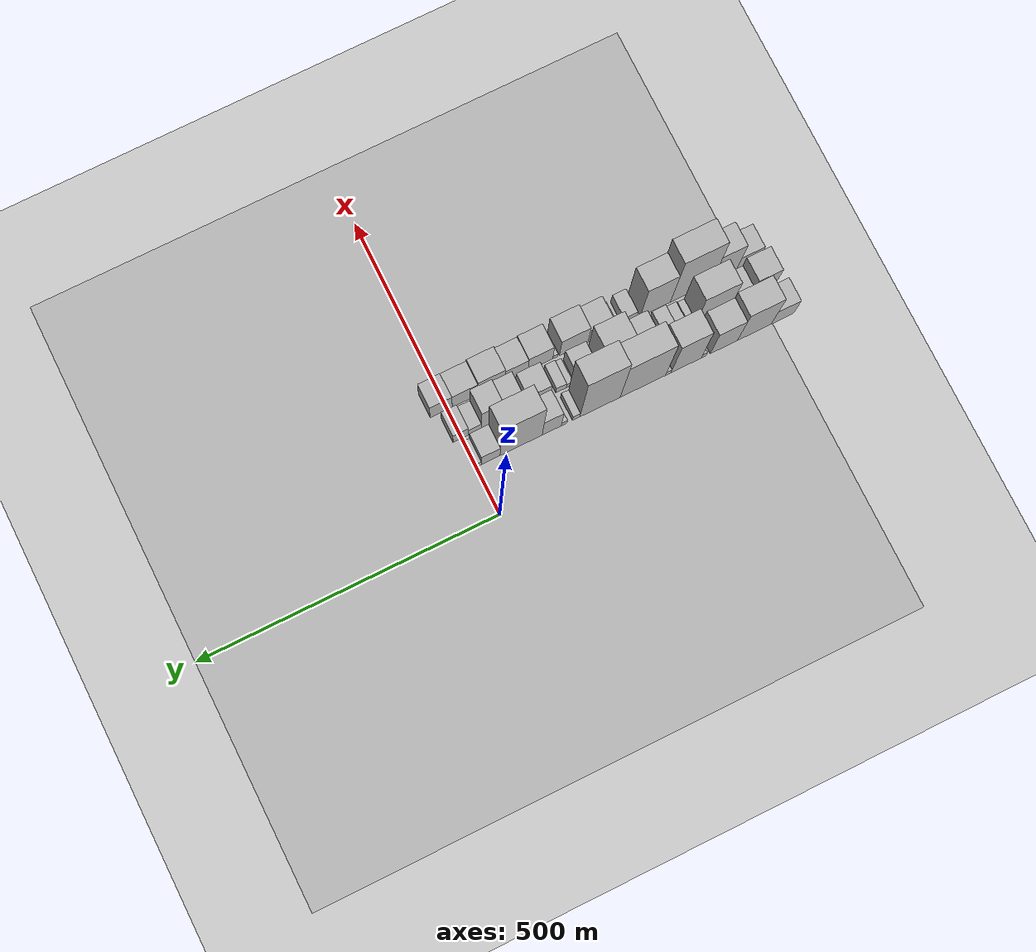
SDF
<sdf version="1.6">
 <world name="default">
  <include><name>ground_plane_1</name><uri>model://HANNAS_ground_plane</uri></include>
  <include>
   <name>ground_plane_2</name>
   <uri>model://HANNAS_ground_plane</uri>
   <pose>100 0 0  0 0 0</pose>
  </include>
  <model name="building_1">
   <static>1</static>
   <pose>100.0000 -516.7739 0 0.000000 0.000000 0.000000</pose>
   <link name="link">
    <pose>0 0 37.50 0 0 0</pose>
    <collision name="collision"><geometry><box><size>40.0000 38.4522 75.0000</size></box></geometry></collision>
    <visual name="visual">
     <cast_shadows>0</cast_shadows>
     <geometry><box><size>40.0000 38.4522 75.0000</size></box></geometry>
     <material>
      <script>
       <uri>model://HANNAS_wall/materials/scripts</uri>
       <uri>model://HANNAS_wall/materials/textures</uri>
       <name>vrc/HANNAS_wall</name>
      </script>
     </material>
    </visual>
   </link>
  </model>
  <model name="building_2">
   <static>1</static>
   <pose>100.0000 -468.6095 0 0.000000 0.000000 0.000000</pose>
   <link name="link">
    <pose>0 0 73.50 0 0 0</pose>
    <collision name="collision"><geometry><box><size>40.0000 57.8766 147.0000</size></box></geometry></collision>
    <visual name="visual">
     <cast_shadows>0</cast_shadows>
     <geometry><box><size>40.0000 57.8766 147.0000</size></box></geometry>
     <material>
      <script>
       <uri>model://HANNAS_wall/materials/scripts</uri>
       <uri>model://HANNAS_wall/materials/textures</uri>
       <name>vrc/HANNAS_wall</name>
      </script>
     </material>
    </visual>
   </link>
  </model>
  <model name="building_3">
   <static>1</static>
   <pose>100.0000 -416.5779 0 0.000000 0.000000 0.000000</pose>
   <link name="link">
    <pose>0 0 58.50 0 0 0</pose>
    <collision name="collision"><geometry><box><size>40.0000 46.1865 117.0000</size></box></geometry></collision>
    <visual name="visual">
     <cast_shadows>0</cast_shadows>
     <geometry><box><size>40.0000 46.1865 117.0000</size></box></geometry>
     <material>
      <script>
       <uri>model://HANNAS_wall/materials/scripts</uri>
       <uri>model://HANNAS_wall/materials/textures</uri>
       <name>vrc/HANNAS_wall</name>
      </script>
     </material>
    </visual>
   </link>
  </model>
  <model name="building_4">
   <static>1</static>
   <pose>100.0000 -382.2491 0 0.000000 0.000000 0.000000</pose>
   <link name="link">
    <pose>0 0 10.50 0 0 0</pose>
    <collision name="collision"><geometry><box><size>40.0000 8.4712 21.0000</size></box></geometry></collision>
    <visual name="visual">
     <cast_shadows>0</cast_shadows>
     <geometry><box><size>40.0000 8.4712 21.0000</size></box></geometry>
     <material>
      <script>
       <uri>model://HANNAS_wall/materials/scripts</uri>
       <uri>model://HANNAS_wall/materials/textures</uri>
       <name>vrc/HANNAS_wall</name>
      </script>
     </material>
    </visual>
   </link>
  </model>
  <model name="building_5">
   <static>1</static>
   <pose>100.0000 -352.4027 0 0.000000 0.000000 0.000000</pose>
   <link name="link">
    <pose>0 0 79.50 0 0 0</pose>
    <collision name="collision"><geometry><box><size>40.0000 51.2216 159.0000</size></box></geometry></collision>
    <visual name="visual">
     <cast_shadows>0</cast_shadows>
     <geometry><box><size>40.0000 51.2216 159.0000</size></box></geometry>
     <material>
      <script>
       <uri>model://HANNAS_wall/materials/scripts</uri>
       <uri>model://HANNAS_wall/materials/textures</uri>
       <name>vrc/HANNAS_wall</name>
      </script>
     </material>
    </visual>
   </link>
  </model>
  <model name="building_6">
   <static>1</static>
   <pose>100.0000 -322.1300 0 0.000000 0.000000 0.000000</pose>
   <link name="link">
    <pose>0 0 10.50 0 0 0</pose>
    <collision name="collision"><geometry><box><size>40.0000 9.3240 21.0000</size></box></geometry></collision>
    <visual name="visual">
     <cast_shadows>0</cast_shadows>
     <geometry><box><size>40.0000 9.3240 21.0000</size></box></geometry>
     <material>
      <script>
       <uri>model://HANNAS_wall/materials/scripts</uri>
       <uri>model://HANNAS_wall/materials/textures</uri>
       <name>vrc/HANNAS_wall</name>
      </script>
     </material>
    </visual>
   </link>
  </model>
  <model name="building_7">
   <static>1</static>
   <pose>100.0000 -279.0681 0 0.000000 0.000000 0.000000</pose>
   <link name="link">
    <pose>0 0 96.00 0 0 0</pose>
    <collision name="collision"><geometry><box><size>40.0000 76.7997 192.0000</size></box></geometry></collision>
    <visual name="visual">
     <cast_shadows>0</cast_shadows>
     <geometry><box><size>40.0000 76.7997 192.0000</size></box></geometry>
     <material>
      <script>
       <uri>model://HANNAS_wall/materials/scripts</uri>
       <uri>model://HANNAS_wall/materials/textures</uri>
       <name>vrc/HANNAS_wall</name>
      </script>
     </material>
    </visual>
   </link>
  </model>
  <model name="building_8">
   <static>1</static>
   <pose>100.0000 -206.6568 0 0.000000 0.000000 0.000000</pose>
   <link name="link">
    <pose>0 0 109.50 0 0 0</pose>
    <collision name="collision"><geometry><box><size>40.0000 68.0230 219.0000</size></box></geometry></collision>
    <visual name="visual">
     <cast_shadows>0</cast_shadows>
     <geometry><box><size>40.0000 68.0230 219.0000</size></box></geometry>
     <material>
      <script>
       <uri>model://HANNAS_wall/materials/scripts</uri>
       <uri>model://HANNAS_wall/materials/textures</uri>
       <name>vrc/HANNAS_wall</name>
      </script>
     </material>
    </visual>
   </link>
  </model>
  <model name="building_9">
   <static>1</static>
   <pose>100.0000 -166.4375 0 0.000000 0.000000 0.000000</pose>
   <link name="link">
    <pose>0 0 13.50 0 0 0</pose>
    <collision name="collision"><geometry><box><size>40.0000 12.4156 27.0000</size></box></geometry></collision>
    <visual name="visual">
     <cast_shadows>0</cast_shadows>
     <geometry><box><size>40.0000 12.4156 27.0000</size></box></geometry>
     <material>
      <script>
       <uri>model://HANNAS_wall/materials/scripts</uri>
       <uri>model://HANNAS_wall/materials/textures</uri>
       <name>vrc/HANNAS_wall</name>
      </script>
     </material>
    </visual>
   </link>
  </model>
  <model name="building_10">
   <static>1</static>
   <pose>100.0000 -146.2951 0 0.000000 0.000000 0.000000</pose>
   <link name="link">
    <pose>0 0 10.50 0 0 0</pose>
    <collision name="collision"><geometry><box><size>40.0000 9.8693 21.0000</size></box></geometry></collision>
    <visual name="visual">
     <cast_shadows>0</cast_shadows>
     <geometry><box><size>40.0000 9.8693 21.0000</size></box></geometry>
     <material>
      <script>
       <uri>model://HANNAS_wall/materials/scripts</uri>
       <uri>model://HANNAS_wall/materials/textures</uri>
       <name>vrc/HANNAS_wall</name>
      </script>
     </material>
    </visual>
   </link>
  </model>
  <model name="building_11">
   <static>1</static>
   <pose>100.0000 -125.3299 0 0.000000 0.000000 0.000000</pose>
   <link name="link">
    <pose>0 0 46.50 0 0 0</pose>
    <collision name="collision"><geometry><box><size>40.0000 32.0611 93.0000</size></box></geometry></collision>
    <visual name="visual">
     <cast_shadows>0</cast_shadows>
     <geometry><box><size>40.0000 32.0611 93.0000</size></box></geometry>
     <material>
      <script>
       <uri>model://HANNAS_wall/materials/scripts</uri>
       <uri>model://HANNAS_wall/materials/textures</uri>
       <name>vrc/HANNAS_wall</name>
      </script>
     </material>
    </visual>
   </link>
  </model>
  <model name="building_12">
   <static>1</static>
   <pose>100.0000 -74.0679 0 0.000000 0.000000 0.000000</pose>
   <link name="link">
    <pose>0 0 96.00 0 0 0</pose>
    <collision name="collision"><geometry><box><size>40.0000 70.4630 192.0000</size></box></geometry></collision>
    <visual name="visual">
     <cast_shadows>0</cast_shadows>
     <geometry><box><size>40.0000 70.4630 192.0000</size></box></geometry>
     <material>
      <script>
       <uri>model://HANNAS_wall/materials/scripts</uri>
       <uri>model://HANNAS_wall/materials/textures</uri>
       <name>vrc/HANNAS_wall</name>
      </script>
     </material>
    </visual>
   </link>
  </model>
  <model name="building_13">
   <static>1</static>
   <pose>100.0000 -23.1314 0 0.000000 0.000000 0.000000</pose>
   <link name="link">
    <pose>0 0 30.00 0 0 0</pose>
    <collision name="collision"><geometry><box><size>40.0000 31.4100 60.0000</size></box></geometry></collision>
    <visual name="visual">
     <cast_shadows>0</cast_shadows>
     <geometry><box><size>40.0000 31.4100 60.0000</size></box></geometry>
     <material>
      <script>
       <uri>model://HANNAS_wall/materials/scripts</uri>
       <uri>model://HANNAS_wall/materials/textures</uri>
       <name>vrc/HANNAS_wall</name>
      </script>
     </material>
    </visual>
   </link>
  </model>
  <model name="building_14">
   <static>1</static>
   <pose>100.0000 -1.5703 0 0.000000 0.000000 0.000000</pose>
   <link name="link">
    <pose>0 0 12.00 0 0 0</pose>
    <collision name="collision"><geometry><box><size>40.0000 11.7123 24.0000</size></box></geometry></collision>
    <visual name="visual">
     <cast_shadows>0</cast_shadows>
     <geometry><box><size>40.0000 11.7123 24.0000</size></box></geometry>
     <material>
      <script>
       <uri>model://HANNAS_wall/materials/scripts</uri>
       <uri>model://HANNAS_wall/materials/textures</uri>
       <name>vrc/HANNAS_wall</name>
      </script>
     </material>
    </visual>
   </link>
  </model>
  <model name="building_30">
   <static>1</static>
   <pose>149.0000 -506.9247 0 0.000000 0.000000 0.000000</pose>
   <link name="link">
    <pose>0 0 51.00 0 0 0</pose>
    <collision name="collision"><geometry><box><size>40.0000 40.1506 102.0000</size></box></geometry></collision>
    <visual name="visual">
     <cast_shadows>0</cast_shadows>
     <geometry><box><size>40.0000 40.1506 102.0000</size></box></geometry>
     <material>
      <script>
       <uri>model://HANNAS_wall/materials/scripts</uri>
       <uri>model://HANNAS_wall/materials/textures</uri>
       <name>vrc/HANNAS_wall</name>
      </script>
     </material>
    </visual>
   </link>
  </model>
  <model name="building_31">
   <static>1</static>
   <pose>149.0000 -469.2389 0 0.000000 0.000000 0.000000</pose>
   <link name="link">
    <pose>0 0 30.00 0 0 0</pose>
    <collision name="collision"><geometry><box><size>40.0000 35.2209 60.0000</size></box></geometry></collision>
    <visual name="visual">
     <cast_shadows>0</cast_shadows>
     <geometry><box><size>40.0000 35.2209 60.0000</size></box></geometry>
     <material>
      <script>
       <uri>model://HANNAS_wall/materials/scripts</uri>
       <uri>model://HANNAS_wall/materials/textures</uri>
       <name>vrc/HANNAS_wall</name>
      </script>
     </material>
    </visual>
   </link>
  </model>
  <model name="building_32">
   <static>1</static>
   <pose>149.0000 -422.1082 0 0.000000 0.000000 0.000000</pose>
   <link name="link">
    <pose>0 0 75.00 0 0 0</pose>
    <collision name="collision"><geometry><box><size>40.0000 59.0405 150.0000</size></box></geometry></collision>
    <visual name="visual">
     <cast_shadows>0</cast_shadows>
     <geometry><box><size>40.0000 59.0405 150.0000</size></box></geometry>
     <material>
      <script>
       <uri>model://HANNAS_wall/materials/scripts</uri>
       <uri>model://HANNAS_wall/materials/textures</uri>
       <name>vrc/HANNAS_wall</name>
      </script>
     </material>
    </visual>
   </link>
  </model>
  <model name="building_33">
   <static>1</static>
   <pose>149.0000 -386.8405 0 0.000000 0.000000 0.000000</pose>
   <link name="link">
    <pose>0 0 12.00 0 0 0</pose>
    <collision name="collision"><geometry><box><size>40.0000 11.4949 24.0000</size></box></geometry></collision>
    <visual name="visual">
     <cast_shadows>0</cast_shadows>
     <geometry><box><size>40.0000 11.4949 24.0000</size></box></geometry>
     <material>
      <script>
       <uri>model://HANNAS_wall/materials/scripts</uri>
       <uri>model://HANNAS_wall/materials/textures</uri>
       <name>vrc/HANNAS_wall</name>
      </script>
     </material>
    </visual>
   </link>
  </model>
  <model name="building_34">
   <static>1</static>
   <pose>149.0000 -368.6834 0 0.000000 0.000000 0.000000</pose>
   <link name="link">
    <pose>0 0 16.50 0 0 0</pose>
    <collision name="collision"><geometry><box><size>40.0000 18.8192 33.0000</size></box></geometry></collision>
    <visual name="visual">
     <cast_shadows>0</cast_shadows>
     <geometry><box><size>40.0000 18.8192 33.0000</size></box></geometry>
     <material>
      <script>
       <uri>model://HANNAS_wall/materials/scripts</uri>
       <uri>model://HANNAS_wall/materials/textures</uri>
       <name>vrc/HANNAS_wall</name>
      </script>
     </material>
    </visual>
   </link>
  </model>
  <model name="building_35">
   <static>1</static>
   <pose>149.0000 -347.5476 0 0.000000 0.000000 0.000000</pose>
   <link name="link">
    <pose>0 0 22.50 0 0 0</pose>
    <collision name="collision"><geometry><box><size>40.0000 23.4526 45.0000</size></box></geometry></collision>
    <visual name="visual">
     <cast_shadows>0</cast_shadows>
     <geometry><box><size>40.0000 23.4526 45.0000</size></box></geometry>
     <material>
      <script>
       <uri>model://HANNAS_wall/materials/scripts</uri>
       <uri>model://HANNAS_wall/materials/textures</uri>
       <name>vrc/HANNAS_wall</name>
      </script>
     </material>
    </visual>
   </link>
  </model>
  <model name="building_36">
   <static>1</static>
   <pose>149.0000 -330.9040 0 0.000000 0.000000 0.000000</pose>
   <link name="link">
    <pose>0 0 10.50 0 0 0</pose>
    <collision name="collision"><geometry><box><size>40.0000 9.8345 21.0000</size></box></geometry></collision>
    <visual name="visual">
     <cast_shadows>0</cast_shadows>
     <geometry><box><size>40.0000 9.8345 21.0000</size></box></geometry>
     <material>
      <script>
       <uri>model://HANNAS_wall/materials/scripts</uri>
       <uri>model://HANNAS_wall/materials/textures</uri>
       <name>vrc/HANNAS_wall</name>
      </script>
     </material>
    </visual>
   </link>
  </model>
  <model name="building_37">
   <static>1</static>
   <pose>149.0000 -307.1108 0 0.000000 0.000000 0.000000</pose>
   <link name="link">
    <pose>0 0 34.50 0 0 0</pose>
    <collision name="collision"><geometry><box><size>40.0000 37.7520 69.0000</size></box></geometry></collision>
    <visual name="visual">
     <cast_shadows>0</cast_shadows>
     <geometry><box><size>40.0000 37.7520 69.0000</size></box></geometry>
     <material>
      <script>
       <uri>model://HANNAS_wall/materials/scripts</uri>
       <uri>model://HANNAS_wall/materials/textures</uri>
       <name>vrc/HANNAS_wall</name>
      </script>
     </material>
    </visual>
   </link>
  </model>
  <model name="building_38">
   <static>1</static>
   <pose>149.0000 -256.8602 0 0.000000 0.000000 0.000000</pose>
   <link name="link">
    <pose>0 0 69.00 0 0 0</pose>
    <collision name="collision"><geometry><box><size>40.0000 50.7493 138.0000</size></box></geometry></collision>
    <visual name="visual">
     <cast_shadows>0</cast_shadows>
     <geometry><box><size>40.0000 50.7493 138.0000</size></box></geometry>
     <material>
      <script>
       <uri>model://HANNAS_wall/materials/scripts</uri>
       <uri>model://HANNAS_wall/materials/textures</uri>
       <name>vrc/HANNAS_wall</name>
      </script>
     </material>
    </visual>
   </link>
  </model>
  <model name="building_39">
   <static>1</static>
   <pose>149.0000 -207.1639 0 0.000000 0.000000 0.000000</pose>
   <link name="link">
    <pose>0 0 30.00 0 0 0</pose>
    <collision name="collision"><geometry><box><size>40.0000 34.6433 60.0000</size></box></geometry></collision>
    <visual name="visual">
     <cast_shadows>0</cast_shadows>
     <geometry><box><size>40.0000 34.6433 60.0000</size></box></geometry>
     <material>
      <script>
       <uri>model://HANNAS_wall/materials/scripts</uri>
       <uri>model://HANNAS_wall/materials/textures</uri>
       <name>vrc/HANNAS_wall</name>
      </script>
     </material>
    </visual>
   </link>
  </model>
  <model name="building_40">
   <static>1</static>
   <pose>149.0000 -179.5465 0 0.000000 0.000000 0.000000</pose>
   <link name="link">
    <pose>0 0 12.00 0 0 0</pose>
    <collision name="collision"><geometry><box><size>40.0000 10.5914 24.0000</size></box></geometry></collision>
    <visual name="visual">
     <cast_shadows>0</cast_shadows>
     <geometry><box><size>40.0000 10.5914 24.0000</size></box></geometry>
     <material>
      <script>
       <uri>model://HANNAS_wall/materials/scripts</uri>
       <uri>model://HANNAS_wall/materials/textures</uri>
       <name>vrc/HANNAS_wall</name>
      </script>
     </material>
    </visual>
   </link>
  </model>
  <model name="building_41">
   <static>1</static>
   <pose>149.0000 -165.5651 0 0.000000 0.000000 0.000000</pose>
   <link name="link">
    <pose>0 0 15.00 0 0 0</pose>
    <collision name="collision"><geometry><box><size>40.0000 17.3715 30.0000</size></box></geometry></collision>
    <visual name="visual">
     <cast_shadows>0</cast_shadows>
     <geometry><box><size>40.0000 17.3715 30.0000</size></box></geometry>
     <material>
      <script>
       <uri>model://HANNAS_wall/materials/scripts</uri>
       <uri>model://HANNAS_wall/materials/textures</uri>
       <name>vrc/HANNAS_wall</name>
      </script>
     </material>
    </visual>
   </link>
  </model>
  <model name="building_42">
   <static>1</static>
   <pose>149.0000 -128.1457 0 0.000000 0.000000 0.000000</pose>
   <link name="link">
    <pose>0 0 34.50 0 0 0</pose>
    <collision name="collision"><geometry><box><size>40.0000 39.4672 69.0000</size></box></geometry></collision>
    <visual name="visual">
     <cast_shadows>0</cast_shadows>
     <geometry><box><size>40.0000 39.4672 69.0000</size></box></geometry>
     <material>
      <script>
       <uri>model://HANNAS_wall/materials/scripts</uri>
       <uri>model://HANNAS_wall/materials/textures</uri>
       <name>vrc/HANNAS_wall</name>
      </script>
     </material>
    </visual>
   </link>
  </model>
  <model name="building_43">
   <static>1</static>
   <pose>149.0000 -84.0226 0 0.000000 0.000000 0.000000</pose>
   <link name="link">
    <pose>0 0 49.50 0 0 0</pose>
    <collision name="collision"><geometry><box><size>40.0000 32.7791 99.0000</size></box></geometry></collision>
    <visual name="visual">
     <cast_shadows>0</cast_shadows>
     <geometry><box><size>40.0000 32.7791 99.0000</size></box></geometry>
     <material>
      <script>
       <uri>model://HANNAS_wall/materials/scripts</uri>
       <uri>model://HANNAS_wall/materials/textures</uri>
       <name>vrc/HANNAS_wall</name>
      </script>
     </material>
    </visual>
   </link>
  </model>
  <model name="building_44">
   <static>1</static>
   <pose>149.0000 -49.7800 0 0.000000 0.000000 0.000000</pose>
   <link name="link">
    <pose>0 0 55.50 0 0 0</pose>
    <collision name="collision"><geometry><box><size>40.0000 35.7062 111.0000</size></box></geometry></collision>
    <visual name="visual">
     <cast_shadows>0</cast_shadows>
     <geometry><box><size>40.0000 35.7062 111.0000</size></box></geometry>
     <material>
      <script>
       <uri>model://HANNAS_wall/materials/scripts</uri>
       <uri>model://HANNAS_wall/materials/textures</uri>
       <name>vrc/HANNAS_wall</name>
      </script>
     </material>
    </visual>
   </link>
  </model>
  <model name="building_45">
   <static>1</static>
   <pose>149.0000 -21.1719 0 0.000000 0.000000 0.000000</pose>
   <link name="link">
    <pose>0 0 18.00 0 0 0</pose>
    <collision name="collision"><geometry><box><size>40.0000 21.5101 36.0000</size></box></geometry></collision>
    <visual name="visual">
     <cast_shadows>0</cast_shadows>
     <geometry><box><size>40.0000 21.5101 36.0000</size></box></geometry>
     <material>
      <script>
       <uri>model://HANNAS_wall/materials/scripts</uri>
       <uri>model://HANNAS_wall/materials/textures</uri>
       <name>vrc/HANNAS_wall</name>
      </script>
     </material>
    </visual>
   </link>
  </model>
  <model name="building_46">
   <static>1</static>
   <pose>149.0000 2.4567 0 0.000000 0.000000 0.000000</pose>
   <link name="link">
    <pose>0 0 25.50 0 0 0</pose>
    <collision name="collision"><geometry><box><size>40.0000 25.7470 51.0000</size></box></geometry></collision>
    <visual name="visual">
     <cast_shadows>0</cast_shadows>
     <geometry><box><size>40.0000 25.7470 51.0000</size></box></geometry>
     <material>
      <script>
       <uri>model://HANNAS_wall/materials/scripts</uri>
       <uri>model://HANNAS_wall/materials/textures</uri>
       <name>vrc/HANNAS_wall</name>
      </script>
     </material>
    </visual>
   </link>
  </model>
  <model name="building_62">
   <static>1</static>
   <pose>198.0000 -508.3905 0 0.000000 0.000000 0.000000</pose>
   <link name="link">
    <pose>0 0 34.50 0 0 0</pose>
    <collision name="collision"><geometry><box><size>40.0000 39.2190 69.0000</size></box></geometry></collision>
    <visual name="visual">
     <cast_shadows>0</cast_shadows>
     <geometry><box><size>40.0000 39.2190 69.0000</size></box></geometry>
     <material>
      <script>
       <uri>model://HANNAS_wall/materials/scripts</uri>
       <uri>model://HANNAS_wall/materials/textures</uri>
       <name>vrc/HANNAS_wall</name>
      </script>
     </material>
    </visual>
   </link>
  </model>
  <model name="building_63">
   <static>1</static>
   <pose>198.0000 -467.8058 0 0.000000 0.000000 0.000000</pose>
   <link name="link">
    <pose>0 0 67.50 0 0 0</pose>
    <collision name="collision"><geometry><box><size>40.0000 41.9503 135.0000</size></box></geometry></collision>
    <visual name="visual">
     <cast_shadows>0</cast_shadows>
     <geometry><box><size>40.0000 41.9503 135.0000</size></box></geometry>
     <material>
      <script>
       <uri>model://HANNAS_wall/materials/scripts</uri>
       <uri>model://HANNAS_wall/materials/textures</uri>
       <name>vrc/HANNAS_wall</name>
      </script>
     </material>
    </visual>
   </link>
  </model>
  <model name="building_64">
   <static>1</static>
   <pose>198.0000 -411.4269 0 0.000000 0.000000 0.000000</pose>
   <link name="link">
    <pose>0 0 106.50 0 0 0</pose>
    <collision name="collision"><geometry><box><size>40.0000 70.8075 213.0000</size></box></geometry></collision>
    <visual name="visual">
     <cast_shadows>0</cast_shadows>
     <geometry><box><size>40.0000 70.8075 213.0000</size></box></geometry>
     <material>
      <script>
       <uri>model://HANNAS_wall/materials/scripts</uri>
       <uri>model://HANNAS_wall/materials/textures</uri>
       <name>vrc/HANNAS_wall</name>
      </script>
     </material>
    </visual>
   </link>
  </model>
  <model name="building_65">
   <static>1</static>
   <pose>198.0000 -350.3452 0 0.000000 0.000000 0.000000</pose>
   <link name="link">
    <pose>0 0 73.50 0 0 0</pose>
    <collision name="collision"><geometry><box><size>40.0000 51.3559 147.0000</size></box></geometry></collision>
    <visual name="visual">
     <cast_shadows>0</cast_shadows>
     <geometry><box><size>40.0000 51.3559 147.0000</size></box></geometry>
     <material>
      <script>
       <uri>model://HANNAS_wall/materials/scripts</uri>
       <uri>model://HANNAS_wall/materials/textures</uri>
       <name>vrc/HANNAS_wall</name>
      </script>
     </material>
    </visual>
   </link>
  </model>
  <model name="building_66">
   <static>1</static>
   <pose>198.0000 -306.0936 0 0.000000 0.000000 0.000000</pose>
   <link name="link">
    <pose>0 0 21.00 0 0 0</pose>
    <collision name="collision"><geometry><box><size>40.0000 23.1474 42.0000</size></box></geometry></collision>
    <visual name="visual">
     <cast_shadows>0</cast_shadows>
     <geometry><box><size>40.0000 23.1474 42.0000</size></box></geometry>
     <material>
      <script>
       <uri>model://HANNAS_wall/materials/scripts</uri>
       <uri>model://HANNAS_wall/materials/textures</uri>
       <name>vrc/HANNAS_wall</name>
      </script>
     </material>
    </visual>
   </link>
  </model>
  <model name="building_67">
   <static>1</static>
   <pose>198.0000 -280.6977 0 0.000000 0.000000 0.000000</pose>
   <link name="link">
    <pose>0 0 10.50 0 0 0</pose>
    <collision name="collision"><geometry><box><size>40.0000 9.6446 21.0000</size></box></geometry></collision>
    <visual name="visual">
     <cast_shadows>0</cast_shadows>
     <geometry><box><size>40.0000 9.6446 21.0000</size></box></geometry>
     <material>
      <script>
       <uri>model://HANNAS_wall/materials/scripts</uri>
       <uri>model://HANNAS_wall/materials/textures</uri>
       <name>vrc/HANNAS_wall</name>
      </script>
     </material>
    </visual>
   </link>
  </model>
  <model name="building_68">
   <static>1</static>
   <pose>198.0000 -255.9049 0 0.000000 0.000000 0.000000</pose>
   <link name="link">
    <pose>0 0 34.50 0 0 0</pose>
    <collision name="collision"><geometry><box><size>40.0000 39.9409 69.0000</size></box></geometry></collision>
    <visual name="visual">
     <cast_shadows>0</cast_shadows>
     <geometry><box><size>40.0000 39.9409 69.0000</size></box></geometry>
     <material>
      <script>
       <uri>model://HANNAS_wall/materials/scripts</uri>
       <uri>model://HANNAS_wall/materials/textures</uri>
       <name>vrc/HANNAS_wall</name>
      </script>
     </material>
    </visual>
   </link>
  </model>
  <model name="building_69">
   <static>1</static>
   <pose>198.0000 -211.7833 0 0.000000 0.000000 0.000000</pose>
   <link name="link">
    <pose>0 0 43.50 0 0 0</pose>
    <collision name="collision"><geometry><box><size>40.0000 48.3024 87.0000</size></box></geometry></collision>
    <visual name="visual">
     <cast_shadows>0</cast_shadows>
     <geometry><box><size>40.0000 48.3024 87.0000</size></box></geometry>
     <material>
      <script>
       <uri>model://HANNAS_wall/materials/scripts</uri>
       <uri>model://HANNAS_wall/materials/textures</uri>
       <name>vrc/HANNAS_wall</name>
      </script>
     </material>
    </visual>
   </link>
  </model>
  <model name="building_70">
   <static>1</static>
   <pose>198.0000 -180.3781 0 0.000000 0.000000 0.000000</pose>
   <link name="link">
    <pose>0 0 9.00 0 0 0</pose>
    <collision name="collision"><geometry><box><size>40.0000 8.5079 18.0000</size></box></geometry></collision>
    <visual name="visual">
     <cast_shadows>0</cast_shadows>
     <geometry><box><size>40.0000 8.5079 18.0000</size></box></geometry>
     <material>
      <script>
       <uri>model://HANNAS_wall/materials/scripts</uri>
       <uri>model://HANNAS_wall/materials/textures</uri>
       <name>vrc/HANNAS_wall</name>
      </script>
     </material>
    </visual>
   </link>
  </model>
  <model name="building_71">
   <static>1</static>
   <pose>198.0000 -155.2346 0 0.000000 0.000000 0.000000</pose>
   <link name="link">
    <pose>0 0 37.50 0 0 0</pose>
    <collision name="collision"><geometry><box><size>40.0000 41.7790 75.0000</size></box></geometry></collision>
    <visual name="visual">
     <cast_shadows>0</cast_shadows>
     <geometry><box><size>40.0000 41.7790 75.0000</size></box></geometry>
     <material>
      <script>
       <uri>model://HANNAS_wall/materials/scripts</uri>
       <uri>model://HANNAS_wall/materials/textures</uri>
       <name>vrc/HANNAS_wall</name>
      </script>
     </material>
    </visual>
   </link>
  </model>
  <model name="building_72">
   <static>1</static>
   <pose>198.0000 -114.9320 0 0.000000 0.000000 0.000000</pose>
   <link name="link">
    <pose>0 0 34.50 0 0 0</pose>
    <collision name="collision"><geometry><box><size>40.0000 38.8261 69.0000</size></box></geometry></collision>
    <visual name="visual">
     <cast_shadows>0</cast_shadows>
     <geometry><box><size>40.0000 38.8261 69.0000</size></box></geometry>
     <material>
      <script>
       <uri>model://HANNAS_wall/materials/scripts</uri>
       <uri>model://HANNAS_wall/materials/textures</uri>
       <name>vrc/HANNAS_wall</name>
      </script>
     </material>
    </visual>
   </link>
  </model>
  <model name="building_73">
   <static>1</static>
   <pose>198.0000 -72.8679 0 0.000000 0.000000 0.000000</pose>
   <link name="link">
    <pose>0 0 40.50 0 0 0</pose>
    <collision name="collision"><geometry><box><size>40.0000 45.3021 81.0000</size></box></geometry></collision>
    <visual name="visual">
     <cast_shadows>0</cast_shadows>
     <geometry><box><size>40.0000 45.3021 81.0000</size></box></geometry>
     <material>
      <script>
       <uri>model://HANNAS_wall/materials/scripts</uri>
       <uri>model://HANNAS_wall/materials/textures</uri>
       <name>vrc/HANNAS_wall</name>
      </script>
     </material>
    </visual>
   </link>
  </model>
  <model name="building_74">
   <static>1</static>
   <pose>198.0000 -28.7360 0 0.000000 0.000000 0.000000</pose>
   <link name="link">
    <pose>0 0 36.00 0 0 0</pose>
    <collision name="collision"><geometry><box><size>40.0000 42.9617 72.0000</size></box></geometry></collision>
    <visual name="visual">
     <cast_shadows>0</cast_shadows>
     <geometry><box><size>40.0000 42.9617 72.0000</size></box></geometry>
     <material>
      <script>
       <uri>model://HANNAS_wall/materials/scripts</uri>
       <uri>model://HANNAS_wall/materials/textures</uri>
       <name>vrc/HANNAS_wall</name>
      </script>
     </material>
    </visual>
   </link>
  </model>
  <model name="building_75">
   <static>1</static>
   <pose>198.0000 11.1851 0 0.000000 0.000000 0.000000</pose>
   <link name="link">
    <pose>0 0 36.00 0 0 0</pose>
    <collision name="collision"><geometry><box><size>40.0000 36.8806 72.0000</size></box></geometry></collision>
    <visual name="visual">
     <cast_shadows>0</cast_shadows>
     <geometry><box><size>40.0000 36.8806 72.0000</size></box></geometry>
     <material>
      <script>
       <uri>model://HANNAS_wall/materials/scripts</uri>
       <uri>model://HANNAS_wall/materials/textures</uri>
       <name>vrc/HANNAS_wall</name>
      </script>
     </material>
    </visual>
   </link>
  </model>
 </world>
</sdf>
